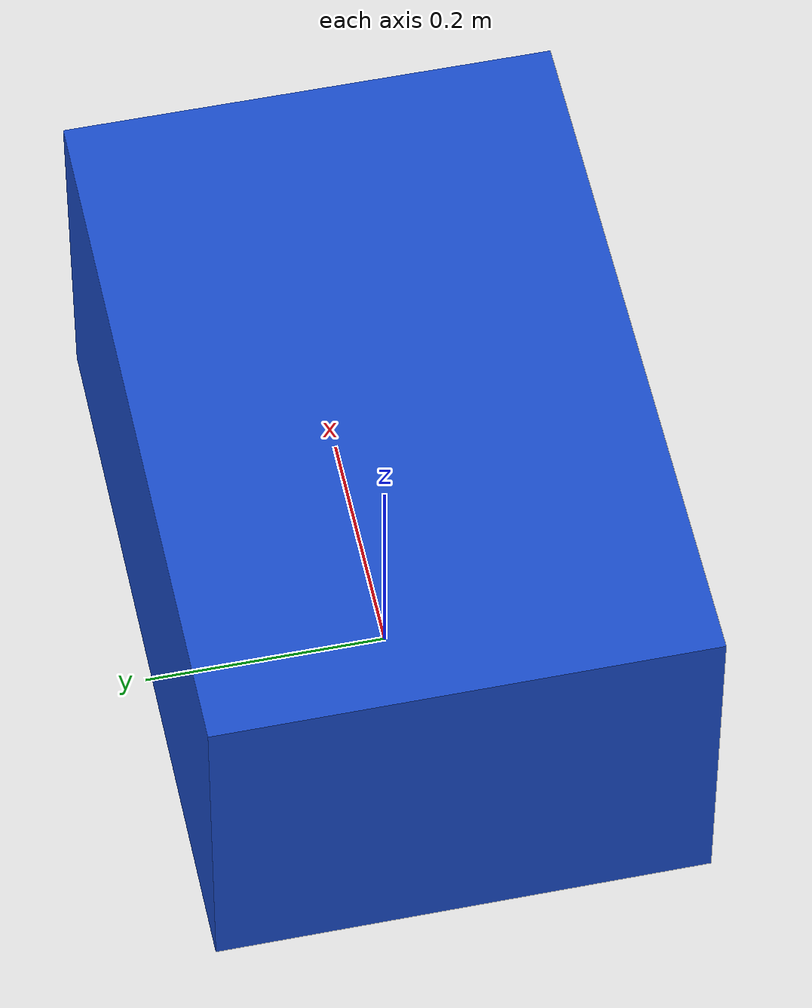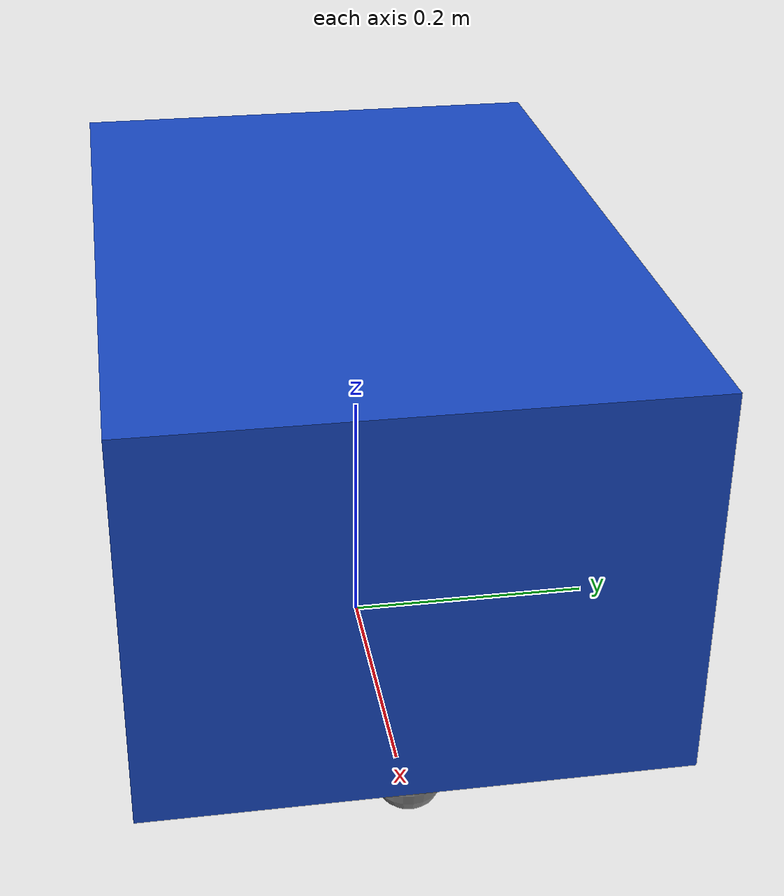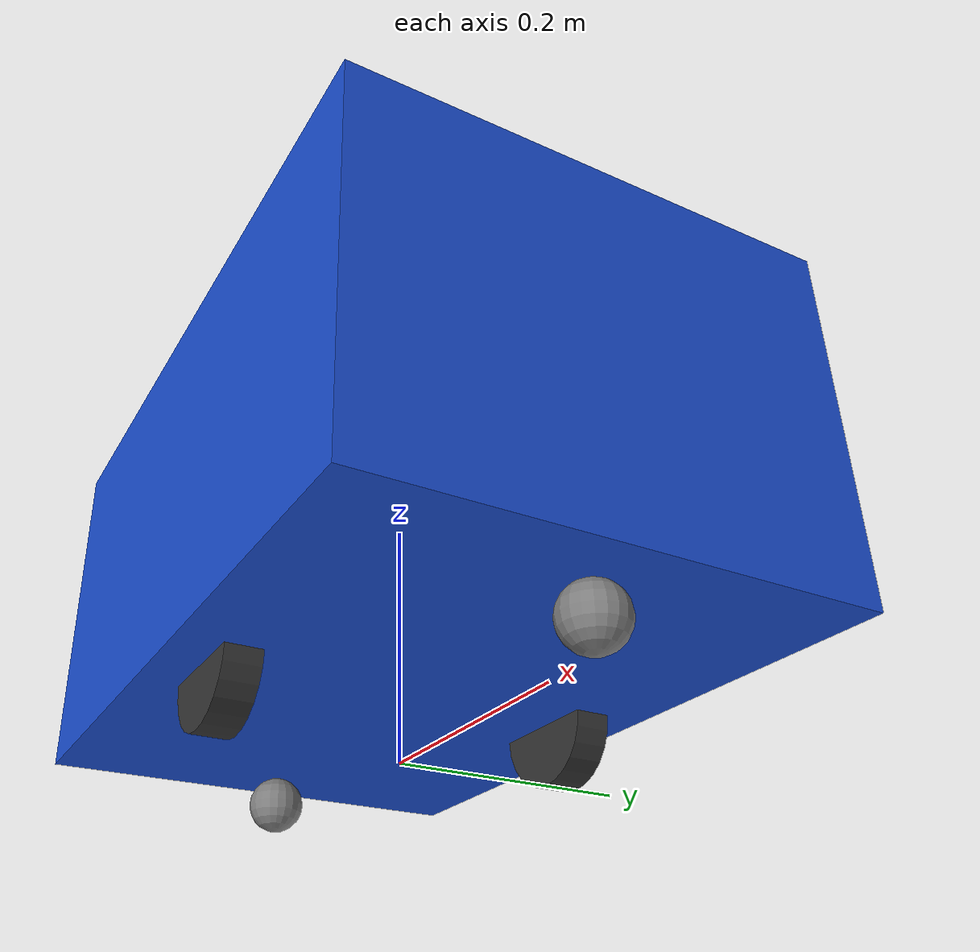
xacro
<?xml version="1.0"?>
<!--
  차동 구동 AMR URDF (xacro 매크로)

  본체: 600mm x 400mm x 300mm
  센서: LiDAR, Camera, IMU
  바퀴: left_wheel, right_wheel (차동 구동)
  캐스터: front_caster, rear_caster
-->
<robot xmlns:xacro="http://www.ros.org/wiki/xacro" name="amr_robot">

  <!-- 파라미터 -->
  <xacro:property name="body_length" value="0.6"/>
  <xacro:property name="body_width" value="0.4"/>
  <xacro:property name="body_height" value="0.3"/>
  <xacro:property name="body_mass" value="20.0"/>

  <xacro:property name="wheel_radius" value="0.05"/>
  <xacro:property name="wheel_width" value="0.03"/>
  <xacro:property name="wheel_mass" value="0.5"/>
  <xacro:property name="wheel_base" value="0.3"/>

  <xacro:property name="caster_radius" value="0.025"/>
  <xacro:property name="caster_mass" value="0.1"/>

  <xacro:property name="lidar_x" value="0.15"/>
  <xacro:property name="lidar_z" value="0.2"/>
  <xacro:property name="camera_x" value="0.18"/>
  <xacro:property name="camera_z" value="0.25"/>
  <xacro:property name="imu_z" value="0.1"/>

  <!-- 매크로: 관성 텐서 -->
  <xacro:macro name="box_inertial" params="mass x y z">
    <inertial>
      <mass value="${mass}"/>
      <inertia ixx="${mass*(y*y+z*z)/12}" ixy="0" ixz="0"
               iyy="${mass*(x*x+z*z)/12}" iyz="0"
               izz="${mass*(x*x+y*y)/12}"/>
    </inertial>
  </xacro:macro>

  <xacro:macro name="cylinder_inertial" params="mass r h">
    <inertial>
      <mass value="${mass}"/>
      <inertia ixx="${mass*(3*r*r+h*h)/12}" ixy="0" ixz="0"
               iyy="${mass*(3*r*r+h*h)/12}" iyz="0"
               izz="${mass*r*r/2}"/>
    </inertial>
  </xacro:macro>

  <xacro:macro name="sphere_inertial" params="mass r">
    <inertial>
      <mass value="${mass}"/>
      <inertia ixx="${2*mass*r*r/5}" ixy="0" ixz="0"
               iyy="${2*mass*r*r/5}" iyz="0"
               izz="${2*mass*r*r/5}"/>
    </inertial>
  </xacro:macro>

  <!-- 매크로: 구동 바퀴 -->
  <xacro:macro name="drive_wheel" params="name y_offset">
    <link name="${name}">
      <visual>
        <geometry>
          <cylinder radius="${wheel_radius}" length="${wheel_width}"/>
        </geometry>
        <material name="dark_gray">
          <color rgba="0.2 0.2 0.2 1.0"/>
        </material>
      </visual>
      <collision>
        <geometry>
          <cylinder radius="${wheel_radius}" length="${wheel_width}"/>
        </geometry>
      </collision>
      <xacro:cylinder_inertial mass="${wheel_mass}" r="${wheel_radius}" h="${wheel_width}"/>
    </link>

    <joint name="${name}_joint" type="continuous">
      <parent link="base_link"/>
      <child link="${name}"/>
      <origin xyz="0 ${y_offset} ${wheel_radius}" rpy="${-pi/2} 0 0"/>
      <axis xyz="0 0 1"/>
      <dynamics damping="0.01" friction="0.1"/>
    </joint>
  </xacro:macro>

  <!-- 매크로: 캐스터 -->
  <xacro:macro name="caster_wheel" params="name x_offset">
    <link name="${name}">
      <visual>
        <geometry>
          <sphere radius="${caster_radius}"/>
        </geometry>
        <material name="gray">
          <color rgba="0.5 0.5 0.5 1.0"/>
        </material>
      </visual>
      <collision>
        <geometry>
          <sphere radius="${caster_radius}"/>
        </geometry>
      </collision>
      <xacro:sphere_inertial mass="${caster_mass}" r="${caster_radius}"/>
    </link>

    <joint name="${name}_joint" type="fixed">
      <parent link="base_link"/>
      <child link="${name}"/>
      <origin xyz="${x_offset} 0 ${caster_radius}" rpy="0 0 0"/>
    </joint>
  </xacro:macro>

  <!-- 본체 (base_link) -->
  <link name="base_footprint"/>

  <link name="base_link">
    <visual>
      <geometry>
        <box size="${body_length} ${body_width} ${body_height}"/>
      </geometry>
      <origin xyz="0 0 ${body_height/2 + wheel_radius}" rpy="0 0 0"/>
      <material name="blue">
        <color rgba="0.1 0.3 0.8 1.0"/>
      </material>
    </visual>
    <collision>
      <geometry>
        <box size="${body_length} ${body_width} ${body_height}"/>
      </geometry>
      <origin xyz="0 0 ${body_height/2 + wheel_radius}" rpy="0 0 0"/>
    </collision>
    <xacro:box_inertial mass="${body_mass}" x="${body_length}" y="${body_width}" z="${body_height}"/>
  </link>

  <joint name="base_footprint_joint" type="fixed">
    <parent link="base_footprint"/>
    <child link="base_link"/>
    <origin xyz="0 0 0" rpy="0 0 0"/>
  </joint>

  <!-- 구동 바퀴 -->
  <xacro:drive_wheel name="left_wheel" y_offset="${wheel_base/2}"/>
  <xacro:drive_wheel name="right_wheel" y_offset="${-wheel_base/2}"/>

  <!-- 캐스터 -->
  <xacro:caster_wheel name="front_caster" x_offset="${body_length/2 - 0.05}"/>
  <xacro:caster_wheel name="rear_caster" x_offset="${-body_length/2 + 0.05}"/>

  <!-- LiDAR -->
  <link name="lidar_link">
    <visual>
      <geometry>
        <cylinder radius="0.04" length="0.04"/>
      </geometry>
      <material name="black">
        <color rgba="0.1 0.1 0.1 1.0"/>
      </material>
    </visual>
    <collision>
      <geometry>
        <cylinder radius="0.04" length="0.04"/>
      </geometry>
    </collision>
    <xacro:cylinder_inertial mass="0.2" r="0.04" h="0.04"/>
  </link>

  <joint name="lidar_joint" type="fixed">
    <parent link="base_link"/>
    <child link="lidar_link"/>
    <origin xyz="${lidar_x} 0 ${lidar_z}" rpy="0 0 0"/>
  </joint>

  <!-- Depth Camera -->
  <link name="camera_link">
    <visual>
      <geometry>
        <box size="0.03 0.08 0.03"/>
      </geometry>
      <material name="dark_gray">
        <color rgba="0.2 0.2 0.2 1.0"/>
      </material>
    </visual>
    <collision>
      <geometry>
        <box size="0.03 0.08 0.03"/>
      </geometry>
    </collision>
    <xacro:box_inertial mass="0.1" x="0.03" y="0.08" z="0.03"/>
  </link>

  <joint name="camera_joint" type="fixed">
    <parent link="base_link"/>
    <child link="camera_link"/>
    <origin xyz="${camera_x} 0 ${camera_z}" rpy="0 0 0"/>
  </joint>

  <link name="camera_optical_frame"/>
  <joint name="camera_optical_joint" type="fixed">
    <parent link="camera_link"/>
    <child link="camera_optical_frame"/>
    <origin xyz="0 0 0" rpy="${-pi/2} 0 ${-pi/2}"/>
  </joint>

  <!-- IMU -->
  <link name="imu_link">
    <visual>
      <geometry>
        <box size="0.02 0.02 0.01"/>
      </geometry>
      <material name="green">
        <color rgba="0.1 0.8 0.1 1.0"/>
      </material>
    </visual>
    <collision>
      <geometry>
        <box size="0.02 0.02 0.01"/>
      </geometry>
    </collision>
    <xacro:box_inertial mass="0.01" x="0.02" y="0.02" z="0.01"/>
  </link>

  <joint name="imu_joint" type="fixed">
    <parent link="base_link"/>
    <child link="imu_link"/>
    <origin xyz="0 0 ${imu_z}" rpy="0 0 0"/>
  </joint>

  <!-- Gazebo 플러그인 -->
  <gazebo>
    <plugin name="diff_drive" filename="libgazebo_ros_diff_drive.so">
      <ros>
        <namespace>/amr</namespace>
      </ros>
      <left_joint>left_wheel_joint</left_joint>
      <right_joint>right_wheel_joint</right_joint>
      <wheel_separation>${wheel_base}</wheel_separation>
      <wheel_diameter>${wheel_radius*2}</wheel_diameter>
      <max_wheel_torque>10</max_wheel_torque>
      <max_wheel_acceleration>2.0</max_wheel_acceleration>
      <odometry_frame>odom</odometry_frame>
      <robot_base_frame>base_footprint</robot_base_frame>
      <publish_odom>true</publish_odom>
      <publish_odom_tf>true</publish_odom_tf>
      <publish_wheel_tf>true</publish_wheel_tf>
    </plugin>
  </gazebo>

  <gazebo reference="lidar_link">
    <sensor type="ray" name="lidar">
      <pose>0 0 0 0 0 0</pose>
      <visualize>true</visualize>
      <update_rate>10</update_rate>
      <ray>
        <scan>
          <horizontal>
            <samples>360</samples>
            <resolution>1</resolution>
            <min_angle>-3.14159</min_angle>
            <max_angle>3.14159</max_angle>
          </horizontal>
        </scan>
        <range>
          <min>0.1</min>
          <max>12.0</max>
          <resolution>0.01</resolution>
        </range>
      </ray>
      <plugin name="lidar_plugin" filename="libgazebo_ros_ray_sensor.so">
        <ros>
          <namespace>/amr</namespace>
          <remapping>~/out:=scan</remapping>
        </ros>
        <output_type>sensor_msgs/LaserScan</output_type>
        <frame_name>lidar_link</frame_name>
      </plugin>
    </sensor>
  </gazebo>

  <gazebo reference="camera_link">
    <sensor type="depth" name="depth_camera">
      <update_rate>15</update_rate>
      <camera>
        <horizontal_fov>1.047</horizontal_fov>
        <image>
          <width>640</width>
          <height>480</height>
          <format>R8G8B8</format>
        </image>
        <clip>
          <near>0.3</near>
          <far>5.0</far>
        </clip>
      </camera>
      <plugin name="depth_camera_plugin" filename="libgazebo_ros_camera.so">
        <ros>
          <namespace>/amr</namespace>
        </ros>
        <camera_name>depth_camera</camera_name>
        <frame_name>camera_optical_frame</frame_name>
        <min_depth>0.3</min_depth>
        <max_depth>5.0</max_depth>
      </plugin>
    </sensor>
  </gazebo>

  <gazebo reference="imu_link">
    <sensor type="imu" name="imu_sensor">
      <update_rate>100</update_rate>
      <plugin name="imu_plugin" filename="libgazebo_ros_imu_sensor.so">
        <ros>
          <namespace>/amr</namespace>
          <remapping>~/out:=imu</remapping>
        </ros>
        <frame_name>imu_link</frame_name>
        <initial_orientation_as_reference>false</initial_orientation_as_reference>
      </plugin>
    </sensor>
  </gazebo>

</robot>
